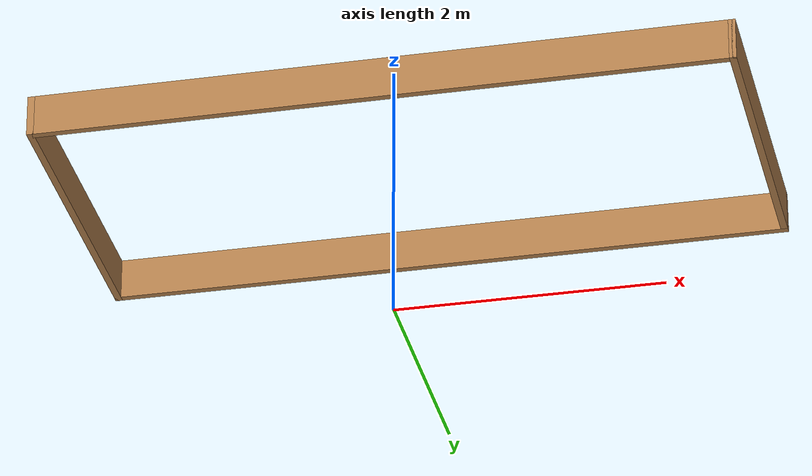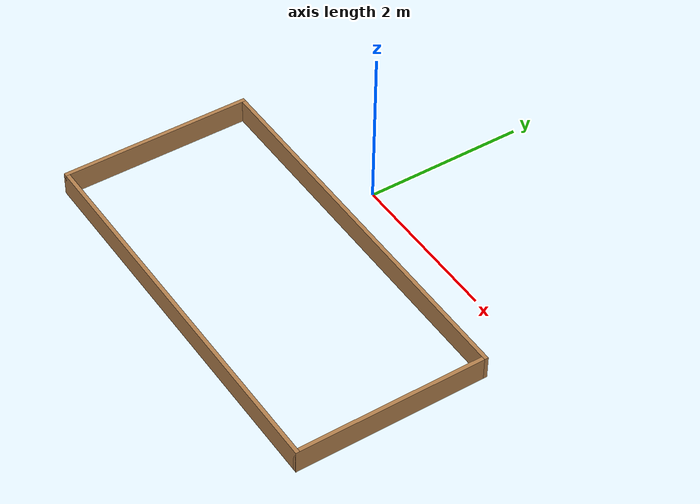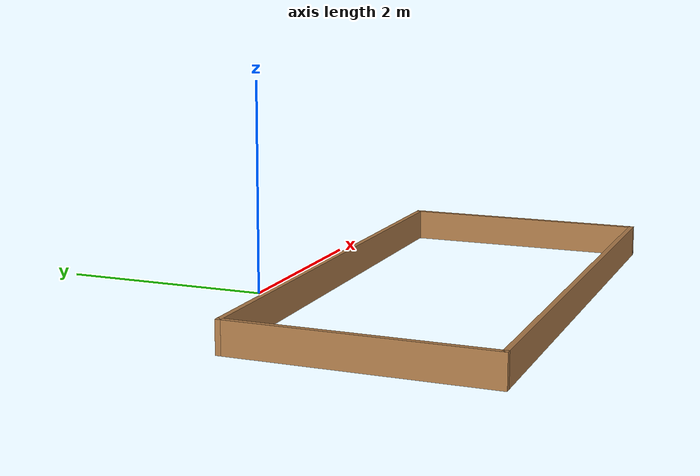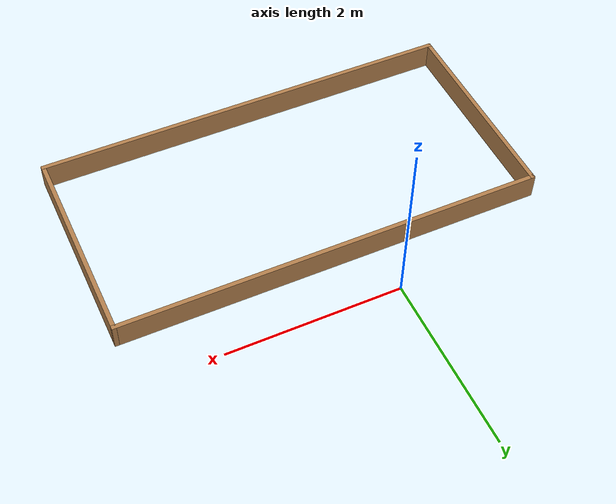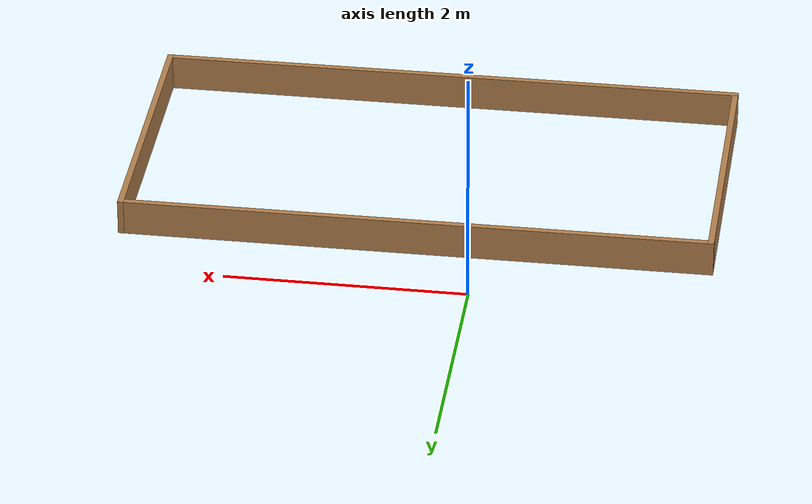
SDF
<?xml version='1.0'?>
<sdf version='1.6'>
  <model name='Hospital'>
    <pose frame=''>0.515 -1.745 0 0 -0 0</pose>
    <link name='Wall_1'>
      <collision name='Wall_1_Collision'>
        <geometry>
          <box>
            <size>4.9 0.05 0.3</size>
          </box>
        </geometry>
        <pose frame=''>0 0 0.15 0 -0 0</pose>
      </collision>
      <visual name='Wall_1_Visual'>
        <pose frame=''>0 0 0.15 0 -0 0</pose>
        <geometry>
          <box>
            <size>4.9 0.05 0.3</size>
          </box>
        </geometry>
        <material>
          <script>
            <uri>file://media/materials/scripts/gazebo.material</uri>
            <name>Gazebo/Wood</name>
          </script>
          <ambient>1 1 1 1</ambient>
        </material>
        <meta>
          <layer>0</layer>
        </meta>
      </visual>
      <pose frame=''>-0 1.175 0 0 -0 3.14159</pose>
    </link>
    <link name='Wall_2'>
      <collision name='Wall_2_Collision'>
        <geometry>
          <box>
            <size>2.4 0.05 0.3</size>
          </box>
        </geometry>
        <pose frame=''>0 0 0.15 0 -0 0</pose>
      </collision>
      <visual name='Wall_2_Visual'>
        <pose frame=''>0 0 0.15 0 -0 0</pose>
        <geometry>
          <box>
            <size>2.4 0.05 0.3</size>
          </box>
        </geometry>
        <material>
          <script>
            <uri>file://media/materials/scripts/gazebo.material</uri>
            <name>Gazebo/Wood</name>
          </script>
          <ambient>1 1 1 1</ambient>
        </material>
        <meta>
          <layer>0</layer>
        </meta>
      </visual>
      <pose frame=''>-2.425 0 0 0 -0 -1.5708</pose>
    </link>
    <link name='Wall_3'>
      <collision name='Wall_3_Collision'>
        <geometry>
          <box>
            <size>4.9 0.05 0.3</size>
          </box>
        </geometry>
        <pose frame=''>0 0 0.15 0 -0 0</pose>
      </collision>
      <visual name='Wall_3_Visual'>
        <pose frame=''>0 0 0.15 0 -0 0</pose>
        <geometry>
          <box>
            <size>4.9 0.05 0.3</size>
          </box>
        </geometry>
        <material>
          <script>
            <uri>file://media/materials/scripts/gazebo.material</uri>
            <name>Gazebo/Wood</name>
          </script>
          <ambient>1 1 1 1</ambient>
        </material>
        <meta>
          <layer>0</layer>
        </meta>
      </visual>
      <pose frame=''>-0 -1.175 0 0 -0 0</pose>
    </link>
    <link name='Wall_4'>
      <collision name='Wall_4_Collision'>
        <geometry>
          <box>
            <size>2.4 0.05 0.3</size>
          </box>
        </geometry>
        <pose frame=''>0 0 0.15 0 -0 0</pose>
      </collision>
      <visual name='Wall_4_Visual'>
        <pose frame=''>0 0 0.15 0 -0 0</pose>
        <geometry>
          <box>
            <size>2.4 0.05 0.3</size>
          </box>
        </geometry>
        <material>
          <script>
            <uri>file://media/materials/scripts/gazebo.material</uri>
            <name>Gazebo/Wood</name>
          </script>
          <ambient>1 1 1 1</ambient>
        </material>
        <meta>
          <layer>0</layer>
        </meta>
      </visual>
      <pose frame=''>2.425 0 0 0 -0 1.5708</pose>
    </link>
    <static>1</static>
  </model>
</sdf>
